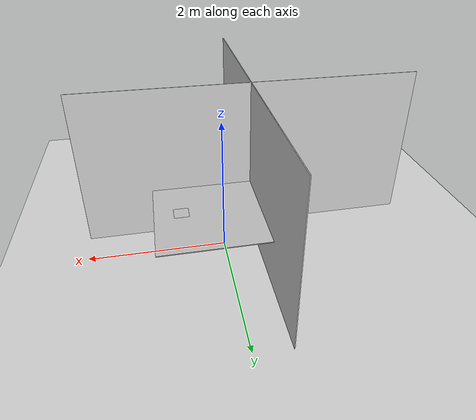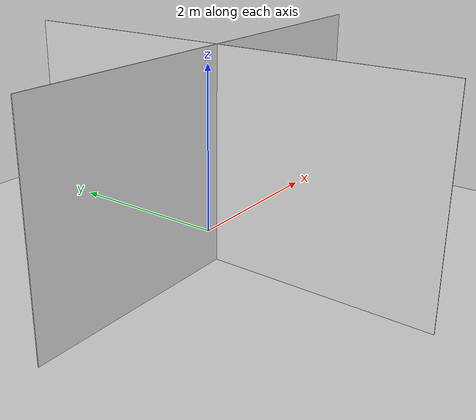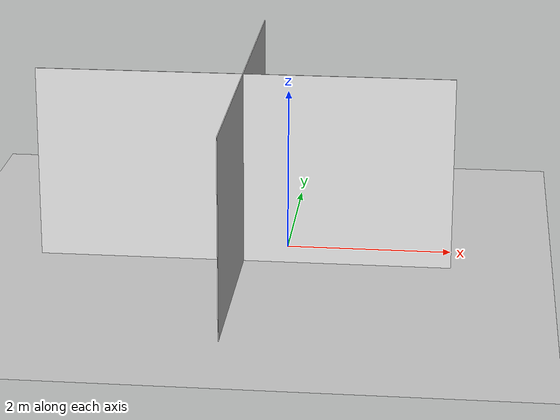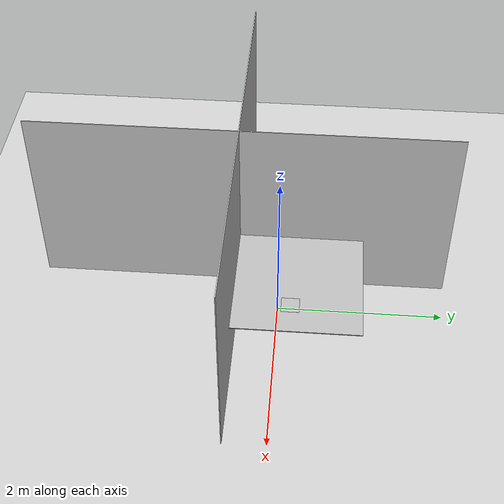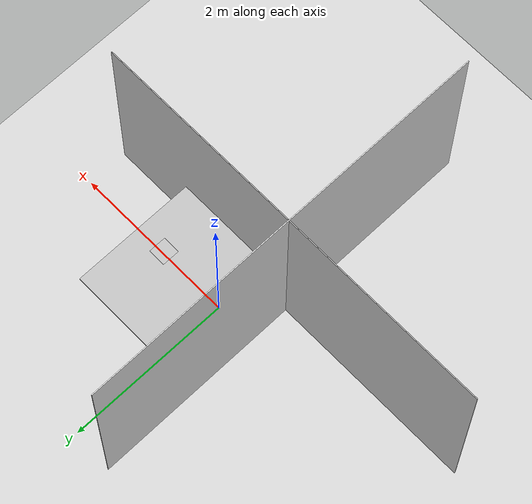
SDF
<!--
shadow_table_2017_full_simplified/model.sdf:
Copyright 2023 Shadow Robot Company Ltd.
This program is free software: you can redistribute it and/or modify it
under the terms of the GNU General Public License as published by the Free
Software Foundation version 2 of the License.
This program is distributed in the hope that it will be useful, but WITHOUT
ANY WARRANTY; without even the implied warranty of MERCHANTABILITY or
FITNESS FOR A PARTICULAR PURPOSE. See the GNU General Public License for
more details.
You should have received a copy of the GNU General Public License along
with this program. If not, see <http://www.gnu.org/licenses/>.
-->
<?xml version="1.0" ?>
<sdf version="1.4">
  <world name="default">
    <!-- Floor -->
    <include>
      <uri>model://ground</uri>
      <pose>-0.20 0.60 0.0 0 0 0</pose>
    </include>
    <light type="directional" name="lab_light">
      <pose>0.86 1.96 2.5 -1.55 0 0</pose>
      <diffuse>.8 .8 .8 1</diffuse>
      <specular>.2 .2 .2 1</specular>
      <attenuation>
        <range>20</range>
        <constant>0.9</constant>
        <linear>0.01</linear>
        <quadratic>0.001</quadratic>
      </attenuation>
      <direction>0 0 -1</direction>
      <cast_shadows>true</cast_shadows>
    </light>
    <include>
      <uri>model://shadow_table_2017_full_simplified</uri>
      <static>true</static>
      <name>shadow_table_2017_full_simplified</name>
      <pose>0.0 0.0 0.750 0 0 0</pose>
    </include>
    <include>
      <uri>model://ar_marker_0_1_2_3_a4</uri>
      <static>true</static>
      <name>ar_marker_0_1_2_3_a4</name>
      <pose>0.725 0.17 0.762 0.0 -1.57079632679 0</pose>
    </include>
    <!-- Rear wall -->
    <include>
      <uri>model://wall</uri>
      <static>true</static>
      <name>wall_1</name>
      <pose>-0.48861 -0.5 1.0 0 0 0</pose>
    </include>
    <!-- Left wall: Modified to allow full extension of arm at startup. Real wall at 0.46315 instead of 1.26315 -->
    <include>
      <uri>model://wall</uri>
      <static>true</static>
      <name>wall_2</name>
      <pose>-0.5 -0.46315 1.0 0 0 1.57079632679</pose>
    </include>
    <!-- Ceiling -->
    <include>
      <uri>model://ground</uri>
      <static>true</static>
      <name>ground_2</name>
      <pose>-0.2 0.6 1.907 0 0 0</pose>
    </include>
    <physics type="ode">
      <gravity>0.000000 0.000000 -9.810000</gravity>
      <ode>
        <solver>
          <type>quick</type>
          <iters>100</iters>
          <precon_iters>0</precon_iters>
          <sor>1.000000</sor>
        </solver>
        <constraints>
          <cfm>0.000000</cfm>
          <erp>0.500000</erp>
          <contact_max_correcting_vel>1000.000000</contact_max_correcting_vel>
          <contact_surface_layer>0.00000</contact_surface_layer>
        </constraints>
      </ode>
      <real_time_update_rate>0.000000</real_time_update_rate>
      <max_step_size>0.001000</max_step_size>
    </physics>
    <scene>
      <ambient>0.4 0.4 0.4 1</ambient>
      <background>0.7 0.7 1 1</background>
      <shadows>1</shadows>
    </scene>
    <gui fullscreen='0'>
      <camera name='user_camera'>
        <pose frame=''>2.8784 4.2586 1.43117 0 0.083643 -2.30699</pose>
        <view_controller>orbit</view_controller>
      </camera>
    </gui>
  </world>
</sdf>

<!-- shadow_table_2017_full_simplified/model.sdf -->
<sdf version="1.4">
  <model name="shadow_table_2017_full_simplified">
    <static>true</static>
    <link name="link">
      <inertial>
        <mass>20</mass>
      </inertial>
      <collision name="collision">
        <pose>0.0 0.0 0.0 0.0 0.0 0.0</pose>
        <geometry>
          <mesh>
            <uri>model://shadow_table_2017_full_simplified/meshes/shadow_table_2017_full_simplified.stl</uri>
          </mesh>
        </geometry>
      </collision>
      <visual name="visual">
        <pose>0.0 0.0 0.0 0.0 0.0 0.0</pose>
        <geometry>
          <mesh>
            <uri>model://shadow_table_2017_full_simplified/meshes/shadow_table_2017_full_simplified.stl</uri>
          </mesh>
        </geometry>
      </visual>
    </link>
  </model>
</sdf>

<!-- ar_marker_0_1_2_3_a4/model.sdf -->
<sdf version="1.6">
  <model name="ar_marker_0_1_2_3_a4">
    <static>true</static>
    <link name="link">
      <visual name="visual">
        <geometry>
          <mesh>
            <uri>model://ar_marker_0_1_2_3_a4/meshes/ar_marker_0_1_2_3_a4.dae</uri>
          <scale>0.01 0.42 0.42</scale></mesh>
        </geometry>
      </visual>
    </link>
  </model>
</sdf>

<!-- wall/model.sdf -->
<sdf version="1.4">
<model name="wall">
    <static>true</static>
    <link name="link">
      <collision name="collision_wall">
        <geometry>
          <box>
            <size>5.0 0.01 2.7</size>
          </box>
        </geometry>
      </collision>
      <visual name="visual_wall">
        <geometry>
          <box>
            <size>5.0 0.01 2.7</size>
          </box>
        </geometry>
        <material>
          <script>
            <uri>file://media/materials/scripts/gazebo.material</uri>
            <name>Gazebo/White</name>
          </script>
        </material>
      </visual>
    </link>
  </model>
</sdf>
